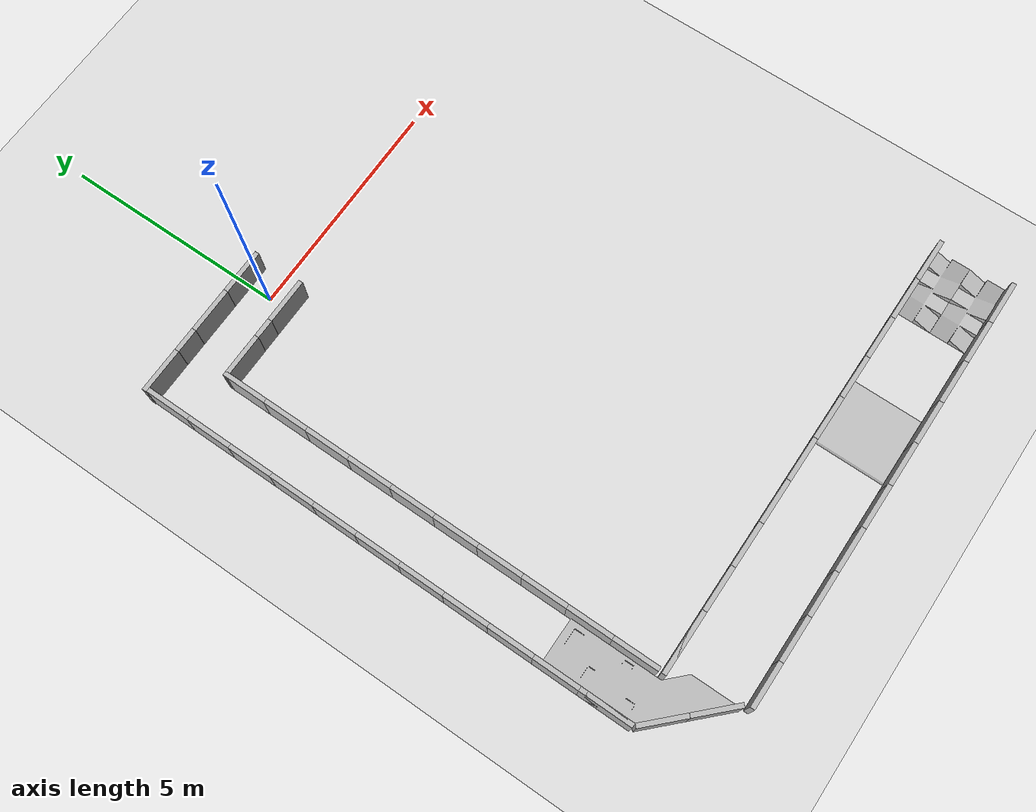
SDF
<sdf version="1.4">
 <world name="default">
  <physics type="ode">
   <gravity>0 0 -9.81</gravity>
   <max_step_size>0.001</max_step_size>
   <real_time_factor>1</real_time_factor>
  </physics>
  <include><uri>model://sun</uri></include>
  <include><uri>model://ground_plane</uri></include>
  <include>
   <name>hole</name>
   <uri>model://challenge_hole_terrain</uri>
   <pose>-1.52 -12.04 0.017 0 0 1.57</pose>
  </include>
  <plugin filename="libRubblePluginImproved.so" name="rubble_plugin">
   <bottom_right>2.25 -12.07  0.15</bottom_right>
   <top_left>2.95 -10.77  0.15</top_left>
   <min_size>0.05 0.025 0.1</min_size>
   <max_size>0.1 0.05 0.2</max_size>
   <min_mass>0.1</min_mass>
   <max_mass>1.</max_mass>
   <count>200</count>
  </plugin>
  <include><name>foam</name><uri>model://soft_ground_B</uri><pose>4.425 -11.42 -0.38 0 0 1.57</pose></include>
  <include>
   <name>set_of_ramps1</name>
   <uri>model://challenge_set_of_ramps</uri>
   <pose>7.795 -11.4 0.12 0 0 1.57</pose>
  </include>
  <include>
   <name>set_of_ramps2</name>
   <uri>model://challenge_set_of_ramps</uri>
   <pose>7.795 -12.2 0.12 0 0 1.57</pose>
  </include>
  <include><name>wall1</name><uri>model://challenge_wall</uri><pose>0 0.55 0.375 0 0 1.57</pose></include>
  <include><name>wall2</name><uri>model://challenge_wall</uri><pose>0 -0.55 0.375 0 0 1.57</pose></include>
  <include><name>wall3</name><uri>model://challenge_wall</uri><pose>-1 0.55 0.375 0 0 1.57</pose></include>
  <include><name>wall4</name><uri>model://challenge_wall</uri><pose>-1 -0.55 0.375 0 0 1.57</pose></include>
  <include><name>wall5</name><uri>model://challenge_wall</uri><pose>-2 0.55 0.375 0 0 1.57</pose></include>
  <include><name>wall6</name><uri>model://challenge_wall</uri><pose>-1.42 -0.55 0.375 0 0 1.57</pose></include>
  <include><name>wall7</name><uri>model://challenge_wall</uri><pose>-2.53 0.55 0.375 0 0 1.57</pose></include>
  <include><name>wall8</name><uri>model://challenge_wall</uri><pose>-2.97 0 0.375 0 0 0</pose></include>
  <include><name>wall9</name><uri>model://challenge_wall</uri><pose>-2.97 -1 0.375 0 0 0</pose></include>
  <include><name>wall10</name><uri>model://challenge_wall</uri><pose>-2.97 -2 0.375 0 0 0</pose></include>
  <include><name>wall11</name><uri>model://challenge_wall</uri><pose>-2.97 -3 0.375 0 0 0</pose></include>
  <include><name>wall12</name><uri>model://challenge_wall</uri><pose>-2.97 -4 0.375 0 0 0</pose></include>
  <include><name>wall13</name><uri>model://challenge_wall</uri><pose>-2.97 -5 0.375 0 0 0</pose></include>
  <include><name>wall14</name><uri>model://challenge_wall</uri><pose>-2.97 -6 0.375 0 0 0</pose></include>
  <include><name>wall15</name><uri>model://challenge_wall</uri><pose>-2.97 -7 0.375 0 0 0</pose></include>
  <include><name>wall16</name><uri>model://challenge_wall</uri><pose>-2.97 -8 0.375 0 0 0</pose></include>
  <include><name>wall17</name><uri>model://challenge_wall</uri><pose>-2.97 -9 0.375 0 0 0</pose></include>
  <include><name>wall18</name><uri>model://challenge_wall</uri><pose>-2.97 -10 0.375 0 0 0</pose></include>
  <include><name>wall19</name><uri>model://challenge_wall</uri><pose>-1.87 -1 0.375 0 0 0</pose></include>
  <include><name>wall20</name><uri>model://challenge_wall</uri><pose>-1.87 -2 0.375 0 0 0</pose></include>
  <include><name>wall21</name><uri>model://challenge_wall</uri><pose>-1.87 -3 0.375 0 0 0</pose></include>
  <include><name>wall22</name><uri>model://challenge_wall</uri><pose>-1.87 -4 0.375 0 0 0</pose></include>
  <include><name>wall23</name><uri>model://challenge_wall</uri><pose>-1.87 -5 0.375 0 0 0</pose></include>
  <include><name>wall24</name><uri>model://challenge_wall</uri><pose>-1.87 -6 0.375 0 0 0</pose></include>
  <include><name>wall25</name><uri>model://challenge_wall</uri><pose>-1.87 -7 0.375 0 0 0</pose></include>
  <include><name>wall26</name><uri>model://challenge_wall</uri><pose>-1.87 -8 0.375 0 0 0</pose></include>
  <include><name>wall27</name><uri>model://challenge_wall</uri><pose>-1.87 -9 0.375 0 0 0</pose></include>
  <include><name>wall28</name><uri>model://challenge_wall</uri><pose>-1.87 -10 0.375 0 0 0</pose></include>
  <include>
   <name>wall29</name>
   <uri>model://challenge_wall</uri>
   <pose>-1.02 -10.61 0.375 0 0 1.57</pose>
  </include>
  <include>
   <name>wall30</name>
   <uri>model://challenge_wall</uri>
   <pose>-1.02 -12.235 0.375 0 0 1.57</pose>
  </include>
  <include>
   <name>wall31</name>
   <uri>model://challenge_wall</uri>
   <pose>-0.02 -10.61 0.375 0 0 1.57</pose>
  </include>
  <include>
   <name>wall32</name>
   <uri>model://challenge_wall</uri>
   <pose>-0.02 -12.235 0.375 0 0 1.57</pose>
  </include>
  <include><name>wall33</name><uri>model://challenge_wall</uri><pose>0.98 -10.61 0.375 0 0 1.57</pose></include>
  <include>
   <name>wall34</name>
   <uri>model://challenge_wall</uri>
   <pose>0.98 -12.235 0.375 0 0 1.57</pose>
  </include>
  <include><name>wall35</name><uri>model://challenge_wall</uri><pose>1.98 -10.61 0.375 0 0 1.57</pose></include>
  <include>
   <name>wall36</name>
   <uri>model://challenge_wall</uri>
   <pose>1.98 -12.235 0.375 0 0 1.57</pose>
  </include>
  <include><name>wall37</name><uri>model://challenge_wall</uri><pose>2.98 -10.61 0.375 0 0 1.57</pose></include>
  <include>
   <name>wall38</name>
   <uri>model://challenge_wall</uri>
   <pose>2.98 -12.235 0.375 0 0 1.57</pose>
  </include>
  <include><name>wall39</name><uri>model://challenge_wall</uri><pose>3.98 -10.61 0.375 0 0 1.57</pose></include>
  <include>
   <name>wall40</name>
   <uri>model://challenge_wall</uri>
   <pose>3.98 -12.235 0.375 0 0 1.57</pose>
  </include>
  <include><name>wall41</name><uri>model://challenge_wall</uri><pose>4.98 -10.61 0.375 0 0 1.57</pose></include>
  <include>
   <name>wall42</name>
   <uri>model://challenge_wall</uri>
   <pose>4.98 -12.235 0.375 0 0 1.57</pose>
  </include>
  <include><name>wall43</name><uri>model://challenge_wall</uri><pose>5.98 -10.61 0.375 0 0 1.57</pose></include>
  <include>
   <name>wall44</name>
   <uri>model://challenge_wall</uri>
   <pose>5.98 -12.235 0.375 0 0 1.57</pose>
  </include>
  <include><name>wall45</name><uri>model://challenge_wall</uri><pose>6.98 -10.61 0.375 0 0 1.57</pose></include>
  <include>
   <name>wall46</name>
   <uri>model://challenge_wall</uri>
   <pose>6.98 -12.235 0.375 0 0 1.57</pose>
  </include>
  <include><name>wall47</name><uri>model://challenge_wall</uri><pose>7.98 -10.61 0.375 0 0 1.57</pose></include>
  <include>
   <name>wall48</name>
   <uri>model://challenge_wall</uri>
   <pose>7.98 -12.235 0.375 0 0 1.57</pose>
  </include>
  <include>
   <name>wall53</name>
   <uri>model://challenge_wall</uri>
   <pose>-1.405 -10.61 0.375 0 0 1.57</pose>
  </include>
  <include><name>wall54</name><uri>model://challenge_wall</uri><pose>-2.97 -10.15 0.375 0 0 0</pose></include>
  <include>
   <name>wall55</name>
   <uri>model://challenge_wall</uri>
   <pose>-2.6 -11.03 0.375 0 0 0.7854</pose>
  </include>
  <include>
   <name>wall56</name>
   <uri>model://challenge_wall</uri>
   <pose>-1.9 -11.73 0.375 0 0 0.7854</pose>
  </include>
 </world>
</sdf>

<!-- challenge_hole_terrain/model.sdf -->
<sdf version="1.4">
<model name="challenge_hole_terrain">
<static>true</static>
<link name="link">
<pose>0 0 0 0 0 0</pose>
<collision name="collision"> <geometry> <mesh> <uri>model://challenge_hole_terrain/mesh/hole_terrain.STL</uri> <scale>0.001 0.001 0.001</scale> </mesh> </geometry> </collision>
<visual name="visual">       <geometry> <mesh> <uri>model://challenge_hole_terrain/mesh/hole_terrain.STL</uri> <scale>0.001 0.001 0.001</scale> </mesh> </geometry> </visual>
</link>
</model>
</sdf>

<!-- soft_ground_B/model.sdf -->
<sdf version="1.2">
  <model name="soft_ground_B">
    <static>true</static>
    <link name="link">
      <collision name="collision">
        <pose>0 0 0 0 0 0</pose>
        <geometry>
          <box>
            <size>1.5 1.5 1</size>
          </box>
        </geometry>

        <surface>
          <friction>
            <ode>
              <mu>1</mu>
              <mu2>1</mu2>
            </ode>
          </friction>
          <contact>
            <ode>
        <kp>10000.0</kp>  <kd>600.0</kd>  <!-- gain set 1 -->
        <!-- gain set 2 -->
          <!-- kd = 0.3 kp --> <!-- gain set 3 -->
            </ode>
          </contact>
        </surface>

      </collision>
      <visual name="visual_1">
	<transparency>0.3</transparency>
        <pose>0 0 0 0 0 0</pose>
        <cast_shadows>false</cast_shadows>
        <geometry>
          <box>
            <size>1.5 1.5 1</size>
          </box>
        </geometry>
        <material>
	  <lighting>true</lighting>
          <script>
            <uri>model://soft_ground_B/materials/scripts</uri>
            <uri>model://soft_ground_B/materials/textures</uri>
            <name>vrc/mudB</name>
          </script>
        </material>
      </visual>
    </link>
  </model>cc
</sdf>

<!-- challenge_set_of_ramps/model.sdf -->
<sdf version="1.4">
	<model name="challenge_set_of_ramps">
		<static>true</static>
		<link name="link">
			<pose>0 0 0 0 0 0</pose>
			<collision name="collision">
				<geometry>
					<mesh>
						<uri>model://challenge_set_of_ramps/mesh/set_of_ramps.stl</uri>
						<scale>0.01 0.01 0.01</scale>
					</mesh>
				</geometry>
			</collision>
			<visual name="visual">
				<geometry>
					<mesh>
						<uri>model://challenge_set_of_ramps/mesh/set_of_ramps.stl</uri>
						<scale>0.01 0.01 0.01</scale>
					</mesh>
				</geometry>
			</visual>
		</link>
	</model>
</sdf>

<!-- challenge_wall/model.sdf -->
<sdf version="1.4">
	<model name="challenge_wall">
    <pose>0 0 0.375 0 0 0</pose>
    <static>true</static>
    <link name="link">
      <collision name="collision">
        <geometry>
          <box>
            <size>0.1 1 0.75</size>
          </box>
        </geometry>
      </collision>
      <visual name="visual">
        <geometry>
          <box>
            <size>0.1 1 0.75</size>
          </box>
        </geometry>
      </visual>
    </link>
	</model>
</sdf>
